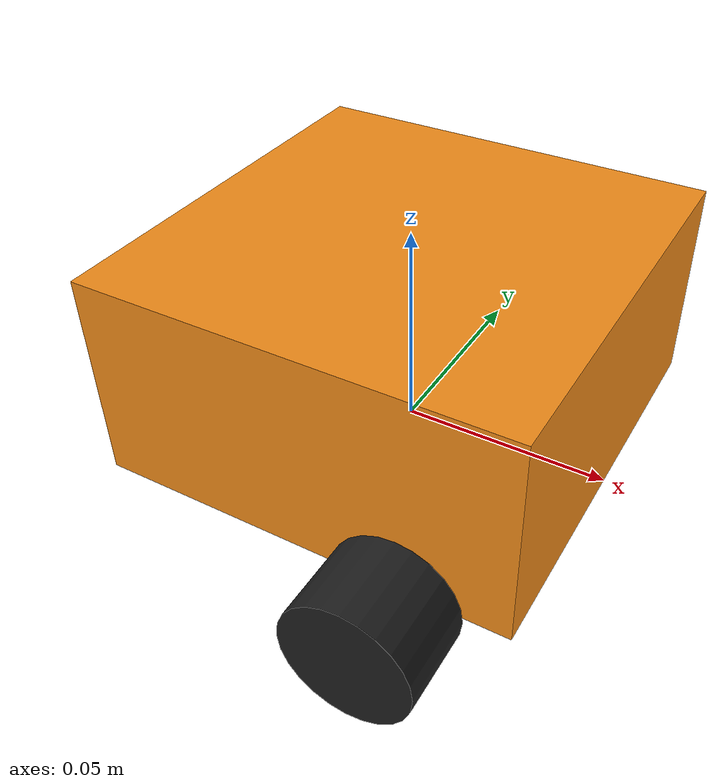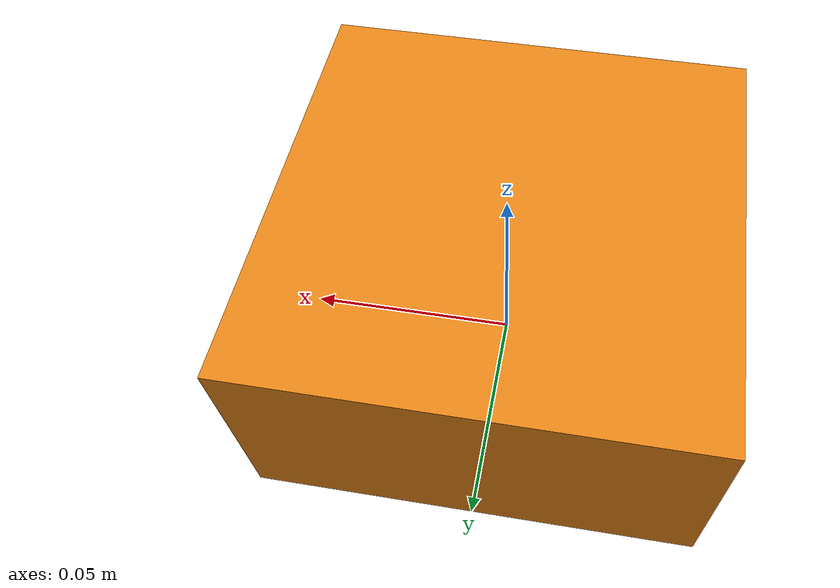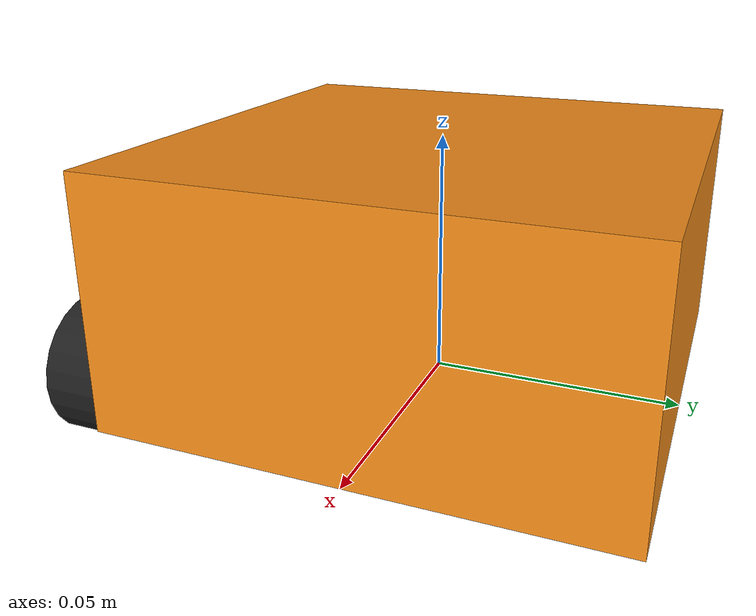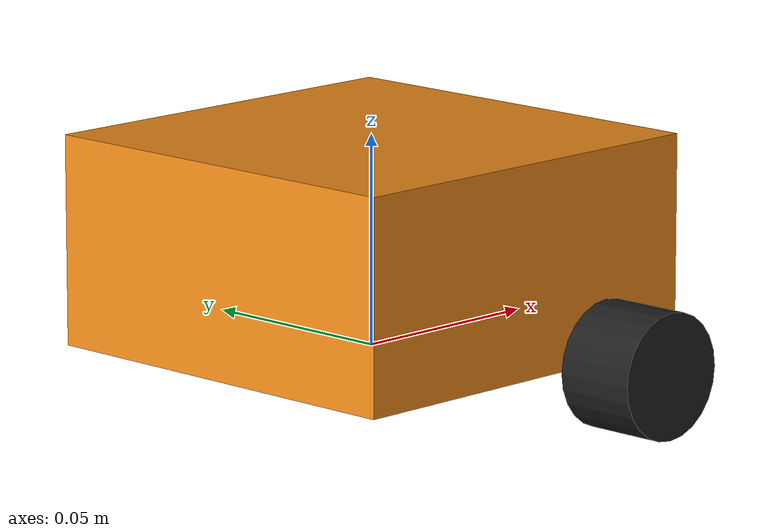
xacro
<?xml version="1.0"?>
<robot xmlns:xacro="http://www.ros.org/wiki/xacro" name="2dof_robot">
  <xacro:arg name="prefix" default="" />

  <!-- Import RRBot macro -->
  <xacro:include filename="rrbot_description.urdf.xacro" />

  <!-- Import Rviz colors -->
  <xacro:include filename="rrbot.materials.xacro" />

  <!-- Import RRBot ros2_control description -->
  <xacro:include filename="$(find test2_ros2control)/ros2_control/rrbot.ros2_control.xacro" />

  <xacro:rrbot prefix="$(arg prefix)"/>

  <xacro:rrbot_ros2_control name="RRBot" prefix="$(arg prefix)" />

</robot>

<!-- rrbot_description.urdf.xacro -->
<robot xmlns:xacro="http://www.ros.org/wiki/xacro">
  <xacro:macro name="rrbot" params="prefix">

    <!-- Definición de constantes para las dimensiones del robot -->
    <xacro:property name="PI" value="3.1415926535897931"/>
    <xacro:property name="base_mass" value="0.3" /> <!-- Masa base del robot -->
    <xacro:property name="base_width" value="0.1" /> <!-- Ancho de la base del robot -->
    <xacro:property name="base_length" value="0.1" /> <!-- Longitud de la base del robot -->
    <xacro:property name="base_height" value="0.05" /> <!-- Altura de la base del robot -->
    <xacro:property name="wheel_mass" value="0.3" /> <!-- Masa de las ruedas -->
    <xacro:property name="wheel_len" value="0.020" /> <!-- Longitud de las ruedas -->
    <xacro:property name="wheel_radius" value="0.015" /> <!-- Radio de las ruedas -->
    <xacro:property name="z_offset" value="${base_height/2}" /> <!-- Desplazamiento vertical de la base del robot -->

    <!-- Se define el enlace de la base del robot -->
    <link name="${prefix}base_link">
      <collision>
        <origin xyz="0 0 ${base_height/2}" rpy="0 0 0"/>
        <geometry>
          <box size="${base_width} ${base_length} ${base_height}"/>
        </geometry>
      </collision>

      <visual>
        <origin xyz="0 0 ${base_height/2}" rpy="0 0 0"/>
        <geometry>
          <box size="${base_width} ${base_length} ${base_height}"/>
        </geometry>
        <material name="orange"/>
      </visual>

      <inertial>
        <origin xyz="0 0 ${base_height/2}" rpy="0 0 0"/>
        <mass value="${base_mass}"/>
        <inertia
          ixx="${base_mass / 12.0 * (base_length*base_length + base_height*base_height)}" ixy="0.0" ixz="0.0"
          iyy="${base_mass / 12.0 * (base_height*base_height + base_width*base_width)}" iyz="0.0"
          izz="${base_mass / 12.0 * (base_width*base_width + base_length*base_length)}"/>
      </inertial>
    </link>

    <joint name="${prefix}wheel_joint" type="continuous">
      <parent link="${prefix}base_link"/>
      <child link="${prefix}wheel"/>
      <origin xyz="${base_width/4} -${base_width/2 + wheel_len/2 + 0.001} 0" rpy="0 0 0"/>
      <axis xyz="0 1 0"/>
      <dynamics damping="0.2"/>
      <limit effort="100" velocity="1.0"/>
    </joint>

    <!-- wheel Link -->
    <link name="${prefix}wheel">
      <collision>
        <origin xyz="0 0 0" rpy="${PI/2} 0 0"/>
        <geometry>
          <cylinder length="${wheel_len}" radius="${wheel_radius}"/>
        </geometry>
      </collision>

      <visual>
        <origin xyz="0 0 0" rpy="${PI/2} 0 0"/>
        <geometry>
          <cylinder length="${wheel_len}" radius="${wheel_radius}"/>
        </geometry>
        <material name="black"/>
      </visual>

      <inertial>
        <origin xyz="0 0 0" rpy="${PI/2} 0 0"/>
        <mass value="${wheel_mass}"/>
        <inertia
          ixx="${wheel_mass / 12.0 * (3*wheel_radius*wheel_radius + wheel_len*wheel_len)}" ixy="0.0" ixz="0.0"
          iyy="${wheel_mass / 12.0 * (3*wheel_radius*wheel_radius + wheel_len*wheel_len)}" iyz="0.0"
          izz="${wheel_mass / 2.0 * wheel_radius*wheel_radius}"/>
        </inertial>
    </link>

  </xacro:macro>

</robot>
